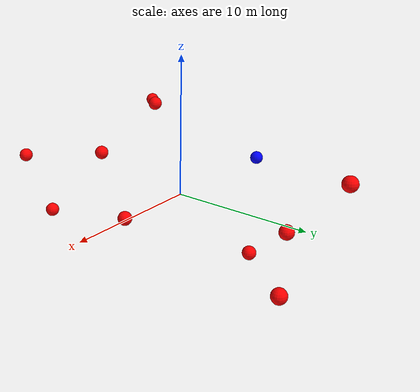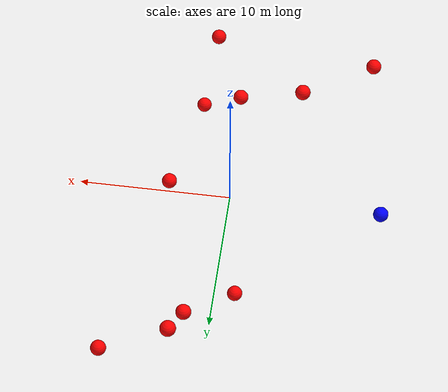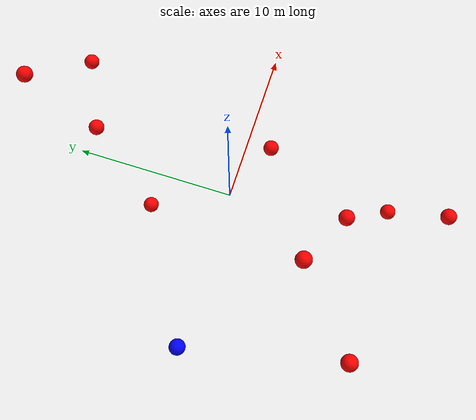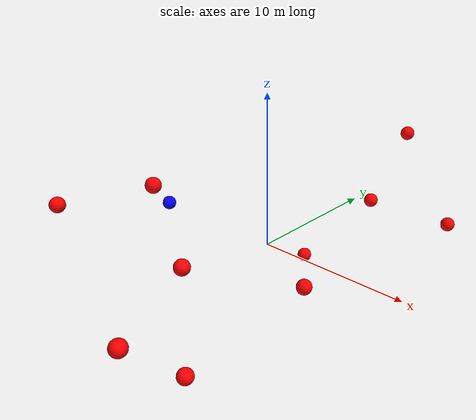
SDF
<?xml version="1.0" ?>
<sdf version="1.8">
    <world name="3d_world">
        <physics name="1ms" type="ode">
            <max_step_size>0.001</max_step_size>
            <real_time_factor>1.0</real_time_factor>
            <real_time_update_rate>1000.0</real_time_update_rate>
        </physics>
        <gravity>0 0 0</gravity>

        <plugin
            filename="gz-sim-physics-system"
            name="gz::sim::v8::systems::Physics">
        </plugin>
        <plugin
            filename="libignition-gazebo-user-commands-system.so"
            name="ignition::gazebo::systems::UserCommands">
        </plugin>
        <plugin
            filename="gz-sim-scene-broadcaster-system"
            name="gz::sim::systems::SceneBroadcaster">
        </plugin>
        <plugin
            filename="gz-sim-sensors-system"
            name="gz::sim::systems::Sensors">
            <render_engine>ogre2</render_engine>
        </plugin>

        <light type="directional" name="sun">
            <cast_shadows>true</cast_shadows>
            <pose>0 0 10 0 0 0</pose>
            <diffuse>0.8 0.8 0.8 1</diffuse>
            <specular>0.2 0.2 0.2 1</specular>
            <attenuation>
                <range>1000</range>
                <constant>0.9</constant>
                <linear>0.01</linear>
                <quadratic>0.001</quadratic>
            </attenuation>
            <direction>-0.5 0.1 -0.9</direction>
        </light>

        <!-- AGENTE -->
        <model name='agente' canonical_link='chassis'>
            <pose relative_to='world'>-10.0 0 0.0 0 0 0</pose>
            <link name='chassis'>
                <pose relative_to='__model__'>0.0 0 0.0 0 0 0</pose>
                <inertial>
                    <mass>1.14395</mass>
                    <inertia>
                        <ixx>0.095329</ixx>
                        <ixy>0</ixy>
                        <ixz>0</ixz>
                        <iyy>0.381317</iyy>
                        <iyz>0</iyz>
                        <izz>0.476646</izz>
                    </inertia>
                </inertial>
                <visual name='visual'>
                    <geometry>
                        <sphere>
                            <radius>0.5</radius>
                        </sphere>
                    </geometry>
                    <material>
                        <ambient>0.0 0.0 1.0 1</ambient>
                        <diffuse>0.0 0.0 1.0 1</diffuse>
                        <specular>0.0 0.0 1.0 1</specular>
                    </material>
                </visual>
                <collision name='collision'>
                    <geometry>
                        <sphere>
                            <radius>0.5</radius>
                        </sphere>
                    </geometry>
                </collision>
                <enable_gravity>false</enable_gravity>
            </link>

            <link name='lidar_link'>
                <pose relative_to='chassis'>0.0 0 0.1 0 0 0</pose>
                <inertial>
                    <mass>0.1</mass>
                    <inertia>
                        <ixx>0.000166667</ixx>
                        <iyy>0.000166667</iyy>
                        <izz>0.000166667</izz>
                    </inertia>
                </inertial>
                <collision name='collision'>
                    <geometry>
                        <cylinder>
                            <radius>0.05</radius>
                            <length>0.1</length>
                        </cylinder>
                    </geometry>
                </collision>
                <visual name='visual'>
                    <geometry>
                        <cylinder>
                            <radius>0.05</radius>
                            <length>0.1</length>
                        </cylinder>
                    </geometry>
                    <material>
                        <ambient>0.0 1.0 0.0 1</ambient>
                        <diffuse>0.0 1.0 0.0 1</diffuse>
                        <specular>0.0 1.0 0.0 1</specular>
                    </material>
                </visual>
                <sensor name="lidar" type="gpu_lidar">
                    <topic>scan</topic>
                    <update_rate>10</update_rate>
                    <lidar>
                        <scan>
                            <horizontal>
                                <samples>5000</samples>
                                <resolution>1</resolution>
                                <min_angle>-3.14159</min_angle>
                                <max_angle>3.14159</max_angle>
                            </horizontal>
                        </scan>
                        <range>
                            <min>0.1</min>
                            <max>10.0</max>
                            <resolution>0.01</resolution>
                        </range>
                    </lidar>
                    <visualize>true</visualize>
                    <always_on>true</always_on>
                    <update_rate>10</update_rate>
                    <pose_frame>lidar</pose_frame>
                </sensor>
                <enable_gravity>false</enable_gravity>
            </link>

            <joint name="lidar_joint" type="fixed">
                <parent>chassis</parent>
                <child>lidar_link</child>
            </joint>

            <plugin
                filename="ignition-gazebo-joint-state-publisher-system"
                name="ignition::gazebo::systems::JointStatePublisher">
            </plugin>
            <plugin
                filename="ignition-gazebo-odometry-publisher-system"
                name="ignition::gazebo::systems::OdometryPublisher">
                <dimensions>3</dimensions>
            </plugin>
            <plugin
                filename="ignition-gazebo-velocity-control-system"
                name="ignition::gazebo::systems::VelocityControl">
                <initial_linear>0.0 0 0</initial_linear>
                <initial_angular>0 0 0.0</initial_angular>
            </plugin>
            <plugin
                filename="libignition-gazebo-pose-publisher-system.so"
                name="ignition::gazebo::systems::PosePublisher">
                <topic>/agente/pose</topic>
                <frame_id>agente</frame_id>
                <update_rate>30</update_rate>
            </plugin>
        </model>

        <!-- OBSTACLE 1 -->
        <model name='obstacle_1' canonical_link='obstacle'>
            <static>false</static>
            <pose relative_to='world'>-8.49 -9.60 3.52 0 0 0</pose>
            <link name='obstacle'>
                <pose relative_to='__model__'>0.0 0 0.0 0 0 0</pose>
                <visual name='visual'>
                    <geometry>
                        <sphere>
                            <radius>0.50</radius>
                        </sphere>
                    </geometry>
                    <material>
                        <ambient>1.0 0.0 0.0 1</ambient>
                        <diffuse>1.0 0.0 0.0 1</diffuse>
                        <specular>1.0 0.0 0.0 1</specular>
                    </material>
                </visual>
                <collision name='collision'>
                    <geometry>
                        <sphere>
                            <radius>0.50</radius>
                        </sphere>
                    </geometry>
                </collision>
                <enable_gravity>false</enable_gravity>
            </link>

            <plugin
                filename="ignition-gazebo-velocity-control-system"
                name="ignition::gazebo::systems::VelocityControl">
                <initial_linear>1.64 1.07 -0.39</initial_linear>
                <initial_angular>0 0 0</initial_angular>
            </plugin>

            <plugin
                filename="ignition-gazebo-odometry-publisher-system"
                name="ignition::gazebo::systems::OdometryPublisher">
                <dimensions>3</dimensions>
            </plugin>
        </model>

        <!-- OBSTACLE 2 -->
        <model name='obstacle_2' canonical_link='obstacle'>
            <static>false</static>
            <pose relative_to='world'>1.95 13.58 4.76 0 0 0</pose>
            <link name='obstacle'>
                <pose relative_to='__model__'>0.0 0 0.0 0 0 0</pose>
                <visual name='visual'>
                    <geometry>
                        <sphere>
                            <radius>0.50</radius>
                        </sphere>
                    </geometry>
                    <material>
                        <ambient>1.0 0.0 0.0 1</ambient>
                        <diffuse>1.0 0.0 0.0 1</diffuse>
                        <specular>1.0 0.0 0.0 1</specular>
                    </material>
                </visual>
                <collision name='collision'>
                    <geometry>
                        <sphere>
                            <radius>0.50</radius>
                        </sphere>
                    </geometry>
                </collision>
                <enable_gravity>false</enable_gravity>
            </link>

            <plugin
                filename="ignition-gazebo-velocity-control-system"
                name="ignition::gazebo::systems::VelocityControl">
                <initial_linear>0.55 -1.81 -0.64</initial_linear>
                <initial_angular>0 0 0</initial_angular>
            </plugin>

            <plugin
                filename="ignition-gazebo-odometry-publisher-system"
                name="ignition::gazebo::systems::OdometryPublisher">
                <dimensions>3</dimensions>
            </plugin>
        </model>

        <!-- OBSTACLE 3 -->
        <model name='obstacle_3' canonical_link='obstacle'>
            <static>false</static>
            <pose relative_to='world'>0.22 -7.36 1.58 0 0 0</pose>
            <link name='obstacle'>
                <pose relative_to='__model__'>0.0 0 0.0 0 0 0</pose>
                <visual name='visual'>
                    <geometry>
                        <sphere>
                            <radius>0.50</radius>
                        </sphere>
                    </geometry>
                    <material>
                        <ambient>1.0 0.0 0.0 1</ambient>
                        <diffuse>1.0 0.0 0.0 1</diffuse>
                        <specular>1.0 0.0 0.0 1</specular>
                    </material>
                </visual>
                <collision name='collision'>
                    <geometry>
                        <sphere>
                            <radius>0.50</radius>
                        </sphere>
                    </geometry>
                </collision>
                <enable_gravity>false</enable_gravity>
            </link>

            <plugin
                filename="ignition-gazebo-velocity-control-system"
                name="ignition::gazebo::systems::VelocityControl">
                <initial_linear>0.93 1.13 -0.24</initial_linear>
                <initial_angular>0 0 0</initial_angular>
            </plugin>

            <plugin
                filename="ignition-gazebo-odometry-publisher-system"
                name="ignition::gazebo::systems::OdometryPublisher">
                <dimensions>3</dimensions>
            </plugin>
        </model>

        <!-- OBSTACLE 4 -->
        <model name='obstacle_4' canonical_link='obstacle'>
            <static>false</static>
            <pose relative_to='world'>6.72 12.13 -0.79 0 0 0</pose>
            <link name='obstacle'>
                <pose relative_to='__model__'>0.0 0 0.0 0 0 0</pose>
                <visual name='visual'>
                    <geometry>
                        <sphere>
                            <radius>0.50</radius>
                        </sphere>
                    </geometry>
                    <material>
                        <ambient>1.0 0.0 0.0 1</ambient>
                        <diffuse>1.0 0.0 0.0 1</diffuse>
                        <specular>1.0 0.0 0.0 1</specular>
                    </material>
                </visual>
                <collision name='collision'>
                    <geometry>
                        <sphere>
                            <radius>0.50</radius>
                        </sphere>
                    </geometry>
                </collision>
                <enable_gravity>false</enable_gravity>
            </link>

            <plugin
                filename="ignition-gazebo-velocity-control-system"
                name="ignition::gazebo::systems::VelocityControl">
                <initial_linear>-0.55 -1.92 0.12</initial_linear>
                <initial_angular>0 0 0</initial_angular>
            </plugin>

            <plugin
                filename="ignition-gazebo-odometry-publisher-system"
                name="ignition::gazebo::systems::OdometryPublisher">
                <dimensions>3</dimensions>
            </plugin>
        </model>

        <!-- OBSTACLE 5 -->
        <model name='obstacle_5' canonical_link='obstacle'>
            <static>false</static>
            <pose relative_to='world'>3.11 -9.97 -2.84 0 0 0</pose>
            <link name='obstacle'>
                <pose relative_to='__model__'>0.0 0 0.0 0 0 0</pose>
                <visual name='visual'>
                    <geometry>
                        <sphere>
                            <radius>0.50</radius>
                        </sphere>
                    </geometry>
                    <material>
                        <ambient>1.0 0.0 0.0 1</ambient>
                        <diffuse>1.0 0.0 0.0 1</diffuse>
                        <specular>1.0 0.0 0.0 1</specular>
                    </material>
                </visual>
                <collision name='collision'>
                    <geometry>
                        <sphere>
                            <radius>0.50</radius>
                        </sphere>
                    </geometry>
                </collision>
                <enable_gravity>false</enable_gravity>
            </link>

            <plugin
                filename="ignition-gazebo-velocity-control-system"
                name="ignition::gazebo::systems::VelocityControl">
                <initial_linear>-0.68 1.81 0.51</initial_linear>
                <initial_angular>0 0 0</initial_angular>
            </plugin>

            <plugin
                filename="ignition-gazebo-odometry-publisher-system"
                name="ignition::gazebo::systems::OdometryPublisher">
                <dimensions>3</dimensions>
            </plugin>
        </model>

        <!-- OBSTACLE 6 -->
        <model name='obstacle_6' canonical_link='obstacle'>
            <static>false</static>
            <pose relative_to='world'>-4.07 -5.65 4.81 0 0 0</pose>
            <link name='obstacle'>
                <pose relative_to='__model__'>0.0 0 0.0 0 0 0</pose>
                <visual name='visual'>
                    <geometry>
                        <sphere>
                            <radius>0.50</radius>
                        </sphere>
                    </geometry>
                    <material>
                        <ambient>1.0 0.0 0.0 1</ambient>
                        <diffuse>1.0 0.0 0.0 1</diffuse>
                        <specular>1.0 0.0 0.0 1</specular>
                    </material>
                </visual>
                <collision name='collision'>
                    <geometry>
                        <sphere>
                            <radius>0.50</radius>
                        </sphere>
                    </geometry>
                </collision>
                <enable_gravity>false</enable_gravity>
            </link>

            <plugin
                filename="ignition-gazebo-velocity-control-system"
                name="ignition::gazebo::systems::VelocityControl">
                <initial_linear>0.99 1.32 -1.13</initial_linear>
                <initial_angular>0 0 0</initial_angular>
            </plugin>

            <plugin
                filename="ignition-gazebo-odometry-publisher-system"
                name="ignition::gazebo::systems::OdometryPublisher">
                <dimensions>3</dimensions>
            </plugin>
        </model>

        <!-- OBSTACLE 7 -->
        <model name='obstacle_7' canonical_link='obstacle'>
            <static>false</static>
            <pose relative_to='world'>2.53 -13.34 0.69 0 0 0</pose>
            <link name='obstacle'>
                <pose relative_to='__model__'>0.0 0 0.0 0 0 0</pose>
                <visual name='visual'>
                    <geometry>
                        <sphere>
                            <radius>0.50</radius>
                        </sphere>
                    </geometry>
                    <material>
                        <ambient>1.0 0.0 0.0 1</ambient>
                        <diffuse>1.0 0.0 0.0 1</diffuse>
                        <specular>1.0 0.0 0.0 1</specular>
                    </material>
                </visual>
                <collision name='collision'>
                    <geometry>
                        <sphere>
                            <radius>0.50</radius>
                        </sphere>
                    </geometry>
                </collision>
                <enable_gravity>false</enable_gravity>
            </link>

            <plugin
                filename="ignition-gazebo-velocity-control-system"
                name="ignition::gazebo::systems::VelocityControl">
                <initial_linear>-0.04 2.00 -0.10</initial_linear>
                <initial_angular>0 0 0</initial_angular>
            </plugin>

            <plugin
                filename="ignition-gazebo-odometry-publisher-system"
                name="ignition::gazebo::systems::OdometryPublisher">
                <dimensions>3</dimensions>
            </plugin>
        </model>

        <!-- OBSTACLE 8 -->
        <model name='obstacle_8' canonical_link='obstacle'>
            <static>false</static>
            <pose relative_to='world'>-1.04 5.25 -3.34 0 0 0</pose>
            <link name='obstacle'>
                <pose relative_to='__model__'>0.0 0 0.0 0 0 0</pose>
                <visual name='visual'>
                    <geometry>
                        <sphere>
                            <radius>0.50</radius>
                        </sphere>
                    </geometry>
                    <material>
                        <ambient>1.0 0.0 0.0 1</ambient>
                        <diffuse>1.0 0.0 0.0 1</diffuse>
                        <specular>1.0 0.0 0.0 1</specular>
                    </material>
                </visual>
                <collision name='collision'>
                    <geometry>
                        <sphere>
                            <radius>0.50</radius>
                        </sphere>
                    </geometry>
                </collision>
                <enable_gravity>false</enable_gravity>
            </link>

            <plugin
                filename="ignition-gazebo-velocity-control-system"
                name="ignition::gazebo::systems::VelocityControl">
                <initial_linear>1.07 -0.84 0.53</initial_linear>
                <initial_angular>0 0 0</initial_angular>
            </plugin>

            <plugin
                filename="ignition-gazebo-odometry-publisher-system"
                name="ignition::gazebo::systems::OdometryPublisher">
                <dimensions>3</dimensions>
            </plugin>
        </model>

        <!-- OBSTACLE 9 -->
        <model name='obstacle_9' canonical_link='obstacle'>
            <static>false</static>
            <pose relative_to='world'>1.67 9.58 0.49 0 0 0</pose>
            <link name='obstacle'>
                <pose relative_to='__model__'>0.0 0 0.0 0 0 0</pose>
                <visual name='visual'>
                    <geometry>
                        <sphere>
                            <radius>0.50</radius>
                        </sphere>
                    </geometry>
                    <material>
                        <ambient>1.0 0.0 0.0 1</ambient>
                        <diffuse>1.0 0.0 0.0 1</diffuse>
                        <specular>1.0 0.0 0.0 1</specular>
                    </material>
                </visual>
                <collision name='collision'>
                    <geometry>
                        <sphere>
                            <radius>0.50</radius>
                        </sphere>
                    </geometry>
                </collision>
                <enable_gravity>false</enable_gravity>
            </link>

            <plugin
                filename="ignition-gazebo-velocity-control-system"
                name="ignition::gazebo::systems::VelocityControl">
                <initial_linear>0.80 -1.40 -0.07</initial_linear>
                <initial_angular>0 0 0</initial_angular>
            </plugin>

            <plugin
                filename="ignition-gazebo-odometry-publisher-system"
                name="ignition::gazebo::systems::OdometryPublisher">
                <dimensions>3</dimensions>
            </plugin>
        </model>

        <!-- OBSTACLE 10 -->
        <model name='obstacle_10' canonical_link='obstacle'>
            <static>false</static>
            <pose relative_to='world'>4.27 -1.45 -0.79 0 0 0</pose>
            <link name='obstacle'>
                <pose relative_to='__model__'>0.0 0 0.0 0 0 0</pose>
                <visual name='visual'>
                    <geometry>
                        <sphere>
                            <radius>0.50</radius>
                        </sphere>
                    </geometry>
                    <material>
                        <ambient>1.0 0.0 0.0 1</ambient>
                        <diffuse>1.0 0.0 0.0 1</diffuse>
                        <specular>1.0 0.0 0.0 1</specular>
                    </material>
                </visual>
                <collision name='collision'>
                    <geometry>
                        <sphere>
                            <radius>0.50</radius>
                        </sphere>
                    </geometry>
                </collision>
                <enable_gravity>false</enable_gravity>
            </link>

            <plugin
                filename="ignition-gazebo-velocity-control-system"
                name="ignition::gazebo::systems::VelocityControl">
                <initial_linear>-0.68 0.32 0.18</initial_linear>
                <initial_angular>0 0 0</initial_angular>
            </plugin>

            <plugin
                filename="ignition-gazebo-odometry-publisher-system"
                name="ignition::gazebo::systems::OdometryPublisher">
                <dimensions>3</dimensions>
            </plugin>
        </model>

    </world>
</sdf>
